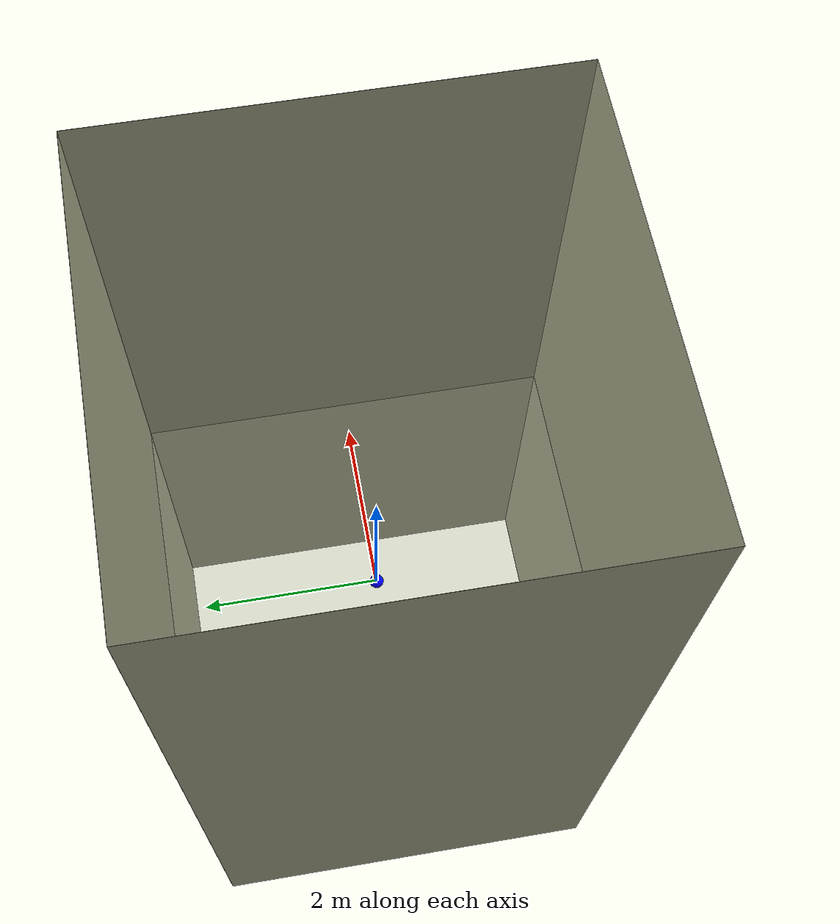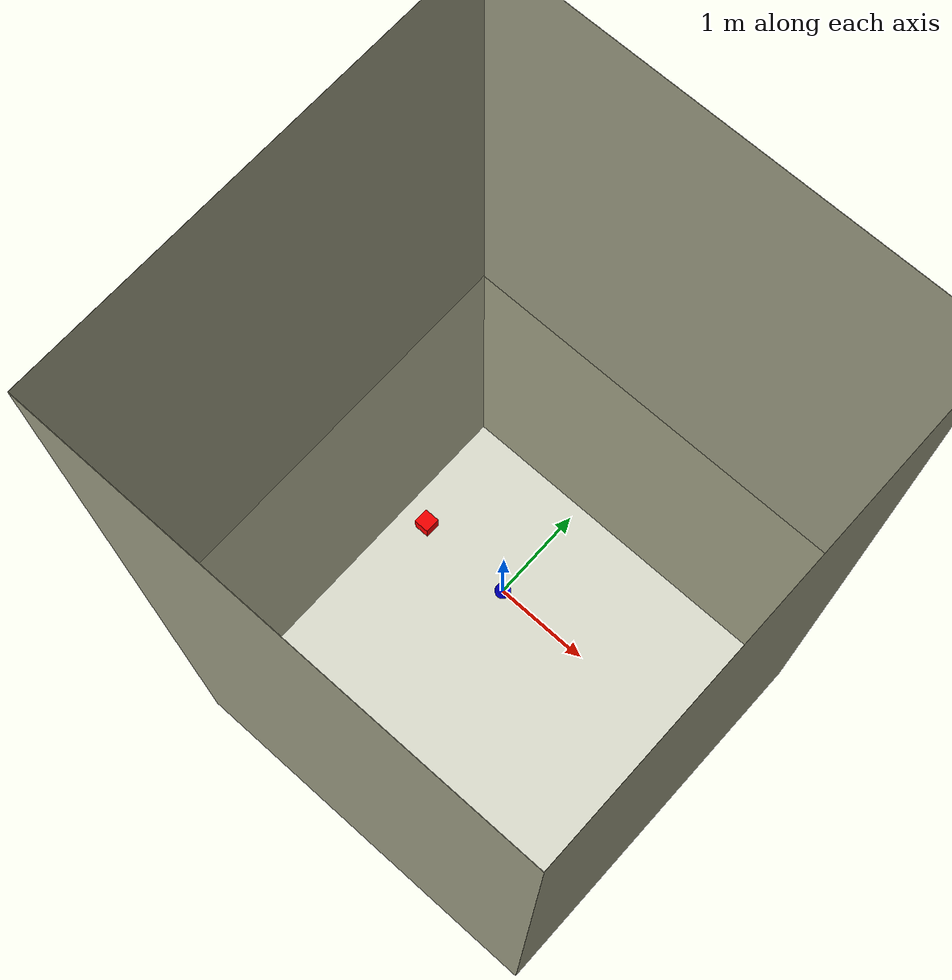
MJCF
<?xml version="1.0" ?>
<mujoco model="blocks">
	<compiler angle="radian" inertiafromgeom="true" texturedir="texture/"/>
	<option gravity="0 0 -9.8" iterations="20" timestep="0.002" viscosity="0"/>
	<asset>
		<material name="MatGnd" reflectance="0.0" rgba=".5 .55 .5 1" shininess=".2" specular=".3"/>
		<material name="MNIST_mat_1"/>
	</asset>
	<worldbody>
		<light castshadow="false" cutoff="40" diffuse=".4 .4 .4" dir="0 0 -1" directional="true" exponent="10" pos="0 0 .9" specular=".7 .7 .7"/>
		<geom conaffinity="1" contype="1" friction="1 0.005 0.0001" material="MatGnd" name="tableTop" pos="0 0 0" rgba=".6 .6 .5 1" size="2.4 2.4 0.02" type="plane"/>
		<geom conaffinity="1" contype="1" material="MatGnd" name="tableRoof" pos="0.0 0.0 3.6" rgba=".6 .6 .5 1" size="2.4 2.4 0.04" type="plane" zaxis="0 0 -1"/>

		<geom conaffinity="1" contype="1" material="MatGnd" name="table_wall_1" pos="2.4 0.0 0.6" rgba=".6 .6 .5 1" size="4.8 2.4 0.04" type="plane" zaxis="-1 0 0"/>
		<geom conaffinity="1" contype="1" material="MatGnd" name="table_wall_2" pos="-2.4 0.0 0.6" rgba=".6 .6 .5 1" size="4.8 2.4 0.04" type="plane" zaxis="1 0 0"/>
		<geom conaffinity="1" contype="1" material="MatGnd" name="table_wall_3" pos="0.0 2.4 0.6" rgba=".6 .6 .5 1" size="2.4 4.8 0.04" type="plane" zaxis="0 -1 0"/>
		<geom conaffinity="1" contype="1" material="MatGnd" name="table_wall_4" pos="0.0 -2.4 0.6" rgba=".6 .6 .5 1" size="2.4 4.8 0.04" type="plane" zaxis="0 1 0"/>

		<body euler="0.0 0.0 0.0" name="block" pos="-1.0 0.0 0.08">
			<geom conaffinity="1" contype="1" friction="1 0.005 0.0001" material="MNIST_mat_1" name="block" rgba="1 0 0 1" size="0.08 0.08 0.08" type="box" user="1"/>
			<joint armature="0" damping="0" limited="false" name="blocks_joint_0" type="free" user="010"/>
		</body>

		<body euler="0.0 0.0 0.0" name="goal" pos="0.0 0.0 0.0">
			<geom conaffinity="0" contype="0" friction="1 0.005 0.0001" name="goal" rgba="0. 0. 1.0 1" size="0.08" type="sphere" user="1"/>
			<joint armature="0" axis="1 0 0" damping="0" limited="true" name="target_x" pos="0 0 0" range="-2.4 2.4" ref="0."  stiffness="0" type="slide"/>
			<joint armature="0" axis="0 1 0" damping="0" limited="true" name="target_y" pos="0 0 0" range="-2.4 2.4" ref="0." stiffness="0" type="slide"/>
		</body>
	</worldbody>
</mujoco>
